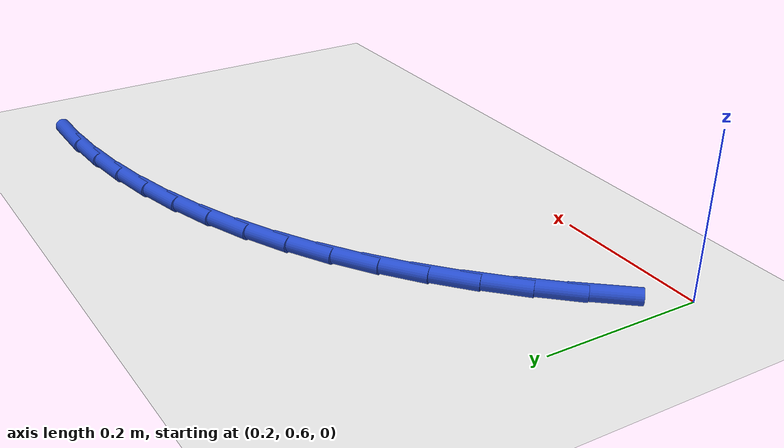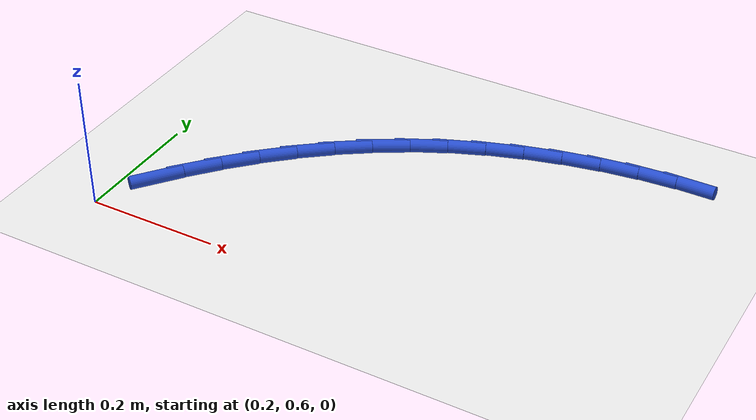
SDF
<sdf version="1.6">
 <world name="default">
  <model name="ground_plane">
   <static>1</static>
   <link name="link">
    <collision name="collision">
     <geometry><plane><normal>0 0 1</normal><size>100 100</size></plane></geometry>
     <surface><friction><ode><mu>100</mu><mu2>50</mu2></ode></friction></surface>
    </collision>
    <visual name="visual">
     <cast_shadows>0</cast_shadows>
     <geometry><plane><normal>0 0 1</normal><size>100 100</size></plane></geometry>
     <material>
      <script><uri>file://media/materials/scripts/gazebo.material</uri><name>Gazebo/WhiteGlow</name></script>
     </material>
    </visual>
   </link>
  </model>
  <model name="line">
   <link name="link_13">
    <pose>0.2488818799104701 0.6817511397450577 0.01 0 1.57 0.8920191021945166</pose>
    <collision name="collision">
     <geometry><cylinder><radius>0.01</radius><length>0.08</length></cylinder></geometry>
    </collision>
    <visual name="visual">
     <material>
      <script><name>Gazebo/Blue</name><uri>file://media/materials/scripts/gazebo.material</uri></script>
     </material>
     <geometry><cylinder><radius>0.01</radius><length>0.08</length></cylinder></geometry>
    </visual>
   </link>
   <link name="link_14">
    <pose>0.2846626629287959 0.7261088946439205 0.01 0 1.57 0.8380725232454261</pose>
    <collision name="collision">
     <geometry><cylinder><radius>0.01</radius><length>0.08</length></cylinder></geometry>
    </collision>
    <visual name="visual">
     <material>
      <script><name>Gazebo/Blue</name><uri>file://media/materials/scripts/gazebo.material</uri></script>
     </material>
     <geometry><cylinder><radius>0.01</radius><length>0.08</length></cylinder></geometry>
    </visual>
   </link>
   <link name="link_15">
    <pose>0.32266690162427275 0.7683435806393237 0.01 0 1.57 0.7807635830100911</pose>
    <collision name="collision">
     <geometry><cylinder><radius>0.01</radius><length>0.08</length></cylinder></geometry>
    </collision>
    <visual name="visual">
     <material>
      <script><name>Gazebo/Blue</name><uri>file://media/materials/scripts/gazebo.material</uri></script>
     </material>
     <geometry><cylinder><radius>0.01</radius><length>0.08</length></cylinder></geometry>
    </visual>
   </link>
   <link name="link_16">
    <pose>0.3629049991240975 0.808210422699224 0.01 0 1.57 0.7199242826649705</pose>
    <collision name="collision">
     <geometry><cylinder><radius>0.01</radius><length>0.08</length></cylinder></geometry>
    </collision>
    <visual name="visual">
     <material>
      <script><name>Gazebo/Blue</name><uri>file://media/materials/scripts/gazebo.material</uri></script>
     </material>
     <geometry><cylinder><radius>0.01</radius><length>0.08</length></cylinder></geometry>
    </visual>
   </link>
   <link name="link_17">
    <pose>0.40538735855546715 0.8454646457915784 0.01 0 1.57 0.6554671493567024</pose>
    <collision name="collision">
     <geometry><cylinder><radius>0.01</radius><length>0.08</length></cylinder></geometry>
    </collision>
    <visual name="visual">
     <material>
      <script><name>Gazebo/Blue</name><uri>file://media/materials/scripts/gazebo.material</uri></script>
     </material>
     <geometry><cylinder><radius>0.01</radius><length>0.08</length></cylinder></geometry>
    </visual>
   </link>
   <link name="link_18">
    <pose>0.45012438304557834 0.8798614748843431 0.01 0 1.57 0.5874121921839127</pose>
    <collision name="collision">
     <geometry><cylinder><radius>0.01</radius><length>0.08</length></cylinder></geometry>
    </collision>
    <visual name="visual">
     <material>
      <script><name>Gazebo/Blue</name><uri>file://media/materials/scripts/gazebo.material</uri></script>
     </material>
     <geometry><cylinder><radius>0.01</radius><length>0.08</length></cylinder></geometry>
    </visual>
   </link>
   <link name="link_19">
    <pose>0.4971264757216277 0.9111561349454742 0.01 0 1.57 0.5159561852383608</pose>
    <collision name="collision">
     <geometry><cylinder><radius>0.01</radius><length>0.08</length></cylinder></geometry>
    </collision>
    <visual name="visual">
     <material>
      <script><name>Gazebo/Blue</name><uri>file://media/materials/scripts/gazebo.material</uri></script>
     </material>
     <geometry><cylinder><radius>0.01</radius><length>0.08</length></cylinder></geometry>
    </visual>
   </link>
   <link name="link_20">
    <pose>0.5464018598409349 0.9391053652958421 0.01 0 1.57 0.4438355652089625</pose>
    <collision name="collision">
     <geometry><cylinder><radius>0.01</radius><length>0.08</length></cylinder></geometry>
    </collision>
    <visual name="visual">
     <material>
      <script><name>Gazebo/Blue</name><uri>file://media/materials/scripts/gazebo.material</uri></script>
     </material>
     <geometry><cylinder><radius>0.01</radius><length>0.08</length></cylinder></geometry>
    </visual>
   </link>
   <link name="link_21">
    <pose>0.5978276154992496 0.9635570102487733 0.01 0 1.57 0.3747194304790145</pose>
    <collision name="collision">
     <geometry><cylinder><radius>0.01</radius><length>0.08</length></cylinder></geometry>
    </collision>
    <visual name="visual">
     <material>
      <script><name>Gazebo/Blue</name><uri>file://media/materials/scripts/gazebo.material</uri></script>
     </material>
     <geometry><cylinder><radius>0.01</radius><length>0.08</length></cylinder></geometry>
    </visual>
   </link>
   <link name="link_22">
    <pose>0.6510773488275245 0.9845002672297705 0.01 0 1.57 0.3084213761090681</pose>
    <collision name="collision">
     <geometry><cylinder><radius>0.01</radius><length>0.08</length></cylinder></geometry>
    </collision>
    <visual name="visual">
     <material>
      <script><name>Gazebo/Blue</name><uri>file://media/materials/scripts/gazebo.material</uri></script>
     </material>
     <geometry><cylinder><radius>0.01</radius><length>0.08</length></cylinder></geometry>
    </visual>
   </link>
   <link name="link_23">
    <pose>0.7058071391819474 1.001936509493129 0.01 0 1.57 0.2443740845227132</pose>
    <collision name="collision">
     <geometry><cylinder><radius>0.01</radius><length>0.08</length></cylinder></geometry>
    </collision>
    <visual name="visual">
     <material>
      <script><name>Gazebo/Blue</name><uri>file://media/materials/scripts/gazebo.material</uri></script>
     </material>
     <geometry><cylinder><radius>0.01</radius><length>0.08</length></cylinder></geometry>
    </visual>
   </link>
   <link name="link_24">
    <pose>0.7616730659187063 1.0158671102931442 0.01 0 1.57 0.18198575880697432</pose>
    <collision name="collision">
     <geometry><cylinder><radius>0.01</radius><length>0.08</length></cylinder></geometry>
    </collision>
    <visual name="visual">
     <material>
      <script><name>Gazebo/Blue</name><uri>file://media/materials/scripts/gazebo.material</uri></script>
     </material>
     <geometry><cylinder><radius>0.01</radius><length>0.08</length></cylinder></geometry>
    </visual>
   </link>
   <link name="link_25">
    <pose>0.8183312083939889 1.0262934428841124 0.01 0 1.57 0.12064860925615532</pose>
    <collision name="collision">
     <geometry><cylinder><radius>0.01</radius><length>0.08</length></cylinder></geometry>
    </collision>
    <visual name="visual">
     <material>
      <script><name>Gazebo/Blue</name><uri>file://media/materials/scripts/gazebo.material</uri></script>
     </material>
     <geometry><cylinder><radius>0.01</radius><length>0.08</length></cylinder></geometry>
    </visual>
   </link>
   <link name="link_26">
    <pose>0.8754376459639831 1.0332168805203283 0.01 0 1.57 0.05974122531709735</pose>
    <collision name="collision">
     <geometry><cylinder><radius>0.01</radius><length>0.08</length></cylinder></geometry>
    </collision>
    <visual name="visual">
     <material>
      <script><name>Gazebo/Blue</name><uri>file://media/materials/scripts/gazebo.material</uri></script>
     </material>
     <geometry><cylinder><radius>0.01</radius><length>0.08</length></cylinder></geometry>
    </visual>
   </link>
   <link name="link_27">
    <pose>0.932648457984877 1.0366387964560884 0.01 0 1.57 -0.0013731915570091163</pose>
    <collision name="collision">
     <geometry><cylinder><radius>0.01</radius><length>0.08</length></cylinder></geometry>
    </collision>
    <visual name="visual">
     <material>
      <script><name>Gazebo/Blue</name><uri>file://media/materials/scripts/gazebo.material</uri></script>
     </material>
     <geometry><cylinder><radius>0.01</radius><length>0.08</length></cylinder></geometry>
    </visual>
   </link>
  </model>
 </world>
</sdf>
